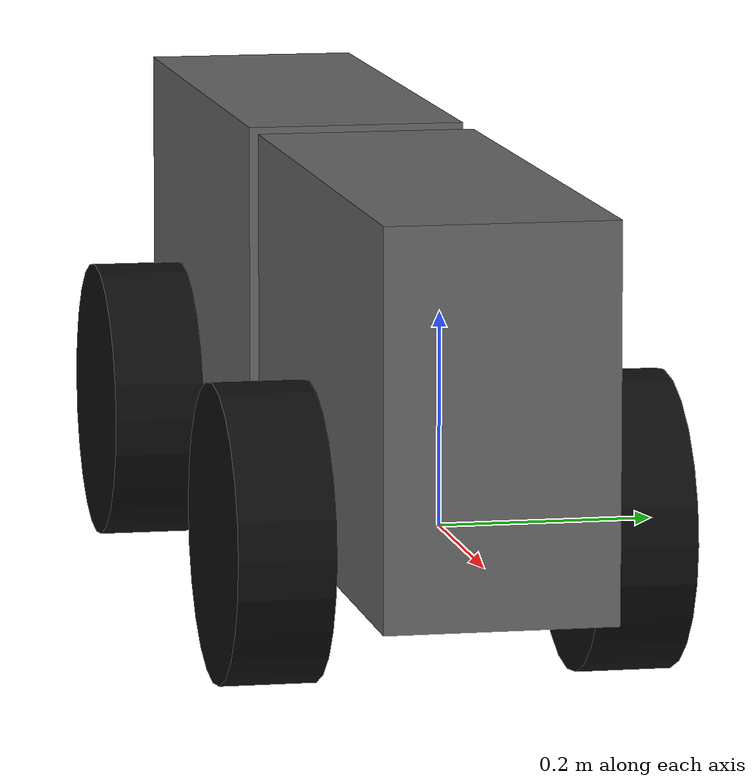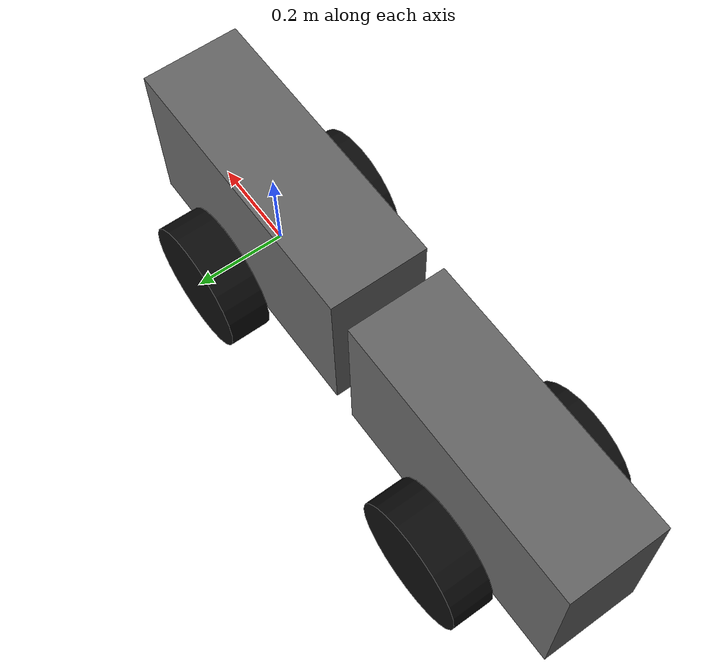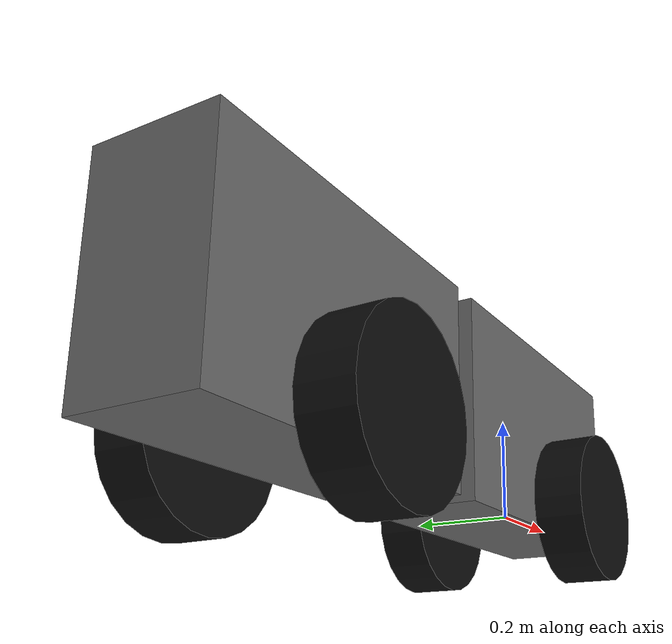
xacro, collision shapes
<?xml version="1.0" encoding="UTF-8"?>
<robot xmlns:xacro="http://www.ros.org/wiki/xacro" name="Floribot">

  <xacro:property name="height_wagon" value="0.363" />
  <xacro:property name="width_wagon" value="0.213" />
  <xacro:property name="length_wagon_front" value="0.635" />
  <xacro:property name="length_wagon_rear" value="0.605" />

  <xacro:property name="ghost_size" value="0.01" />
  <xacro:property name="base_2_front_wagon" value="0.04" />
  <xacro:property name="axesRear_2_rear_wagon" value="0.025" />

  <xacro:property name="wheel_radius" value="0.140" />
  <xacro:property name="wheel_thickness" value="0.09" />
  <xacro:property name="x_joint_wheel_front" value="0" />
  <xacro:property name="y_joint_wheel_front" value="0.167" />
  <xacro:property name="x_joint_wheel_back" value="0" />
  <xacro:property name="y_joint_wheel_back" value="0.167" />

  <xacro:property name="radius" value="0.008" />
  <xacro:property name="vertical_length" value="0.06" />
  <xacro:property name="horizontal_length" value="0.055" />
  <xacro:property name="wheel_joint_2_mid_joint" value="0.383" />

  <link name="base_link">
    <visual>
      <origin xyz="0 0 ${wheel_radius + ghost_size}" rpy="0 0 0"/>
      <geometry>
        <box size="${ghost_size} ${ghost_size} ${ghost_size}"/>
      </geometry>
      <material name="base_mat">
        <color rgba="0.0 0.8 0.8 1.0"/>
      </material>
    </visual>
  </link>

  <link name="axesFront"/>
  <joint name="base_link_2_axesFront" type="fixed">
    <parent link="base_link"/>
    <child link="axesFront"/>
    <origin xyz="0 0 0"/>
  </joint>

  <link name="front_wagon">
    <visual>
      <origin xyz="-${length_wagon_front/2+0.0255} 0 -${wheel_radius}" rpy="0 0 0"/>
      <geometry>
        <mesh filename="package://floribot_gz_description/meshes/Vorderwagen.stl" scale="0.001 0.001 0.001"/>
      </geometry>
      <material name="front_wagon_mat">
        <color rgba="0.4 0.4 0.4 1.0"/>
      </material>
    </visual>
    <collision>
      <origin xyz="0 0 ${wheel_radius}" rpy="0 0 0"/>
      <geometry>
        <box size="${length_wagon_front} ${width_wagon} ${height_wagon}"/>
      </geometry>
    </collision>
    <inertial>
      <origin xyz="0 0 ${wheel_radius}" rpy="0 0 0"/>
      <mass value="31"/>
      <inertia ixx="0.3853" ixy="0.0001197" ixz="-0.0128" iyy="1.0" iyz="0.0000149" izz="0.8678"/>
    </inertial>
  </link>

  <joint name="j_base_2_front_wagon" type="fixed">
    <parent link="base_link"/>
    <child link="front_wagon"/>
    <origin xyz="${-base_2_front_wagon} 0 0"/>
  </joint>

  <link name="jointFront">
    <visual>
      <geometry>
        <cylinder length="${vertical_length}" radius="${radius}"/>
      </geometry>
      <material name="joint_mat">
        <color rgba="0.2 0.2 0.2 1.0"/>
      </material>
    </visual>
    <collision>
      <geometry>
        <cylinder length="${vertical_length}" radius="${radius}"/>
      </geometry>
    </collision>
    <inertial>
      <mass value="0.01"/>
      <inertia ixx="0.000004" ixy="0.0" ixz="0.0" iyy="0.000004" iyz="0.0" izz="0.000004"/>
    </inertial>
  </link>

  <joint name="body_angle" type="revolute">
    <axis xyz="1 0 0"/>
    <limit effort="1.0" lower="-1.57" upper="1.57" velocity="0.5"/>
    <parent link="axesFront"/>
    <child link="jointFront"/>
    <origin xyz="${-wheel_joint_2_mid_joint} 0 0"/>
  </joint>

  <link name="jointRear">
    <visual>
      <origin xyz="0 0 0" rpy="0 1.57 0"/>
      <geometry>
        <cylinder length="${horizontal_length}" radius="${radius}"/>
      </geometry>
      <material name="joint_rear_mat">
        <color rgba="0.2 0.2 0.2 1.0"/>
      </material>
    </visual>
    <collision>
      <origin xyz="0 0 0" rpy="0 1.57 0"/>
      <geometry>
        <cylinder length="${horizontal_length}" radius="${radius}"/>
      </geometry>
    </collision>
    <inertial>
      <mass value="0.01"/>
      <inertia ixx="0.000004" ixy="0.0" ixz="0.0" iyy="0.000004" iyz="0.0" izz="0.000004"/>
    </inertial>
  </link>

  <joint name="j_revolute_front_rear" type="revolute">
    <axis xyz="0 0 1"/>
    <limit effort="1.0" lower="-1.57" upper="1.57" velocity="0.5"/>
    <parent link="jointFront"/>
    <child link="jointRear"/>
    <origin xyz="0 0 0"/>
  </joint>

  <link name="axesRear">
    <visual>
      <origin xyz="0 0 ${wheel_radius}" rpy="0 0 0"/>
      <geometry>
        <box size="${ghost_size} ${ghost_size} ${ghost_size}"/>
      </geometry>
      <material name="rear_axis_mat">
        <color rgba="0 0 0.8 1.0"/>
      </material>
    </visual>
    <collision>
      <origin xyz="0 0 ${wheel_radius}" rpy="0 0 0"/>
      <geometry>
        <box size="${ghost_size} ${ghost_size} ${ghost_size}"/>
      </geometry>
    </collision>
    <inertial>
      <origin xyz="0 0 ${wheel_radius}" rpy="0 0 0"/>
      <mass value="0.001"/>
      <inertia ixx="1.369982" ixy="0.0" ixz="0.0" iyy="0.487502" iyz="0.0" izz="1.132200"/>
    </inertial>
  </link>

  <joint name="j_jointRear_rear_wagon" type="fixed">
    <parent link="jointRear"/>
    <child link="axesRear"/>
    <origin xyz="${-wheel_joint_2_mid_joint + vertical_length/2} 0 0"/>
  </joint>

  <link name="rear_wagon">
    <visual>
      <origin xyz="${length_wagon_rear/2+0.056} 0 -${wheel_radius}" rpy="0 0 0"/>
      <geometry>
        <mesh filename="package://floribot_gz_description/meshes/Hinterwagen.stl" scale="0.001 0.001 0.001"/>
      </geometry>
      <material name="rear_wagon_mat">
        <color rgba="0.4 0.4 0.4 1.0"/>
      </material>
    </visual>
    <collision>
      <origin xyz="0 0 ${wheel_radius}" rpy="0 0 0"/>
      <geometry>
        <box size="${length_wagon_rear} ${width_wagon} ${height_wagon}"/>
      </geometry>
    </collision>
    <inertial>
      <origin xyz="0 0 ${wheel_radius}" rpy="0 0 0"/>
      <mass value="33"/>
      <inertia ixx="0.4137" ixy="0.00027" ixz="0.007359" iyy="1.047" iyz="0.0001775" izz="0.9021"/>
    </inertial>
  </link>

  <joint name="j_axesRear_2_rear_wagon" type="fixed">
    <parent link="axesRear"/>
    <child link="rear_wagon"/>
    <origin xyz="${axesRear_2_rear_wagon} 0 0"/>
  </joint>

  <link name="frontLeft">
    <visual>
      <origin xyz="0 -${wheel_thickness/2-0.0095} 0" rpy="1.57 0 0"/>
      <geometry>
        <mesh filename="package://floribot_gz_description/meshes/Reifen.stl" scale="0.001 0.001 0.001"/>
      </geometry>
      <material name="wheel_mat">
        <color rgba="0.05 0.05 0.05 1.0"/>
      </material>
    </visual>
    <collision>
      <origin xyz="0 0 0" rpy="1.57 0 0"/>
      <geometry>
        <cylinder length="${wheel_thickness}" radius="${wheel_radius}"/>
      </geometry>
    </collision>
    <inertial>
      <mass value="2.4"/>
      <inertia ixx="0.014" ixy="0.0" ixz="0.0" iyy="0.026" iyz="0.0" izz="0.014"/>
    </inertial>
  </link>

  <joint name="joint_frontLeft" type="continuous">
    <parent link="axesFront"/>
    <child link="frontLeft"/>
    <axis xyz="0 1 0"/>
    <origin xyz="${x_joint_wheel_front} ${y_joint_wheel_front} 0"/>
    <limit effort="100.0" velocity="14.2857"/>
  </joint>

  <link name="frontRight">
    <visual>
      <origin xyz="0 -${wheel_thickness/2 - 0.0105} 0" rpy="1.57 0 0"/>
      <geometry>
        <mesh filename="package://floribot_gz_description/meshes/Reifen.stl" scale="0.001 0.001 0.001"/>
      </geometry>
      <material name="wheel_mat_r">
        <color rgba="0.05 0.05 0.05 1.0"/>
      </material>
    </visual>
    <collision>
      <origin xyz="0 0 0" rpy="1.57 0 0"/>
      <geometry>
        <cylinder length="${wheel_thickness}" radius="${wheel_radius}"/>
      </geometry>
    </collision>
    <inertial>
      <mass value="2.4"/>
      <inertia ixx="0.014" ixy="0.0" ixz="0.0" iyy="0.026" iyz="0.0" izz="0.014"/>
    </inertial>
  </link>

  <joint name="joint_frontRight" type="continuous">
    <parent link="axesFront"/>
    <child link="frontRight"/>
    <axis xyz="0 1 0"/>
    <origin xyz="${x_joint_wheel_front} -${y_joint_wheel_front} 0"/>
    <limit effort="100.0" velocity="14.2857"/>
  </joint>

  <link name="rearRight">
    <visual>
      <origin xyz="0 -${wheel_thickness/2 - 0.0105} 0" rpy="1.57 0 0"/>
      <geometry>
        <mesh filename="package://floribot_gz_description/meshes/Reifen.stl" scale="0.001 0.001 0.001"/>
      </geometry>
      <material name="wheel_mat_rr">
        <color rgba="0.05 0.05 0.05 1.0"/>
      </material>
    </visual>
    <collision>
      <origin xyz="0 0 0" rpy="1.57 0 0"/>
      <geometry>
        <cylinder length="${wheel_thickness}" radius="${wheel_radius}"/>
      </geometry>
    </collision>
    <inertial>
      <mass value="2.4"/>
      <inertia ixx="0.014" ixy="0.0" ixz="0.0" iyy="0.026" iyz="0.0" izz="0.014"/>
    </inertial>
  </link>

  <joint name="joint_rearRight" type="continuous">
    <parent link="axesRear"/>
    <child link="rearRight"/>
    <axis xyz="0 1 0"/>
    <origin xyz="${x_joint_wheel_back} -${y_joint_wheel_back} 0"/>
    <limit effort="100.0" velocity="14.2857"/>
  </joint>

  <link name="rearLeft">
    <visual>
      <origin xyz="0 -${wheel_thickness/2-0.0095} 0" rpy="1.57 0 0"/>
      <geometry>
        <mesh filename="package://floribot_gz_description/meshes/Reifen.stl" scale="0.001 0.001 0.001"/>
      </geometry>
      <material name="wheel_mat_rl">
        <color rgba="0.05 0.05 0.05 1.0"/>
      </material>
    </visual>
    <collision>
      <origin xyz="0 0 0" rpy="1.57 0 0"/>
      <geometry>
        <cylinder length="${wheel_thickness}" radius="${wheel_radius}"/>
      </geometry>
    </collision>
    <inertial>
      <mass value="2.4"/>
      <inertia ixx="0.014" ixy="0.0" ixz="0.0" iyy="0.026" iyz="0.0" izz="0.014"/>
    </inertial>
  </link>

  <joint name="joint_rearLeft" type="continuous">
    <parent link="axesRear"/>
    <child link="rearLeft"/>
    <axis xyz="0 1 0"/>
    <origin xyz="${x_joint_wheel_back} ${y_joint_wheel_back} 0"/>
    <limit effort="100.0" velocity="14.2857"/>
  </joint>

</robot>
